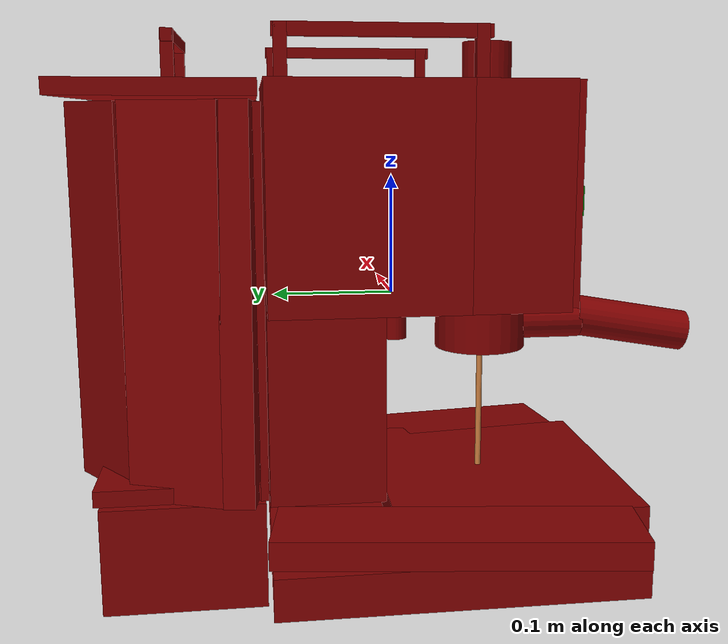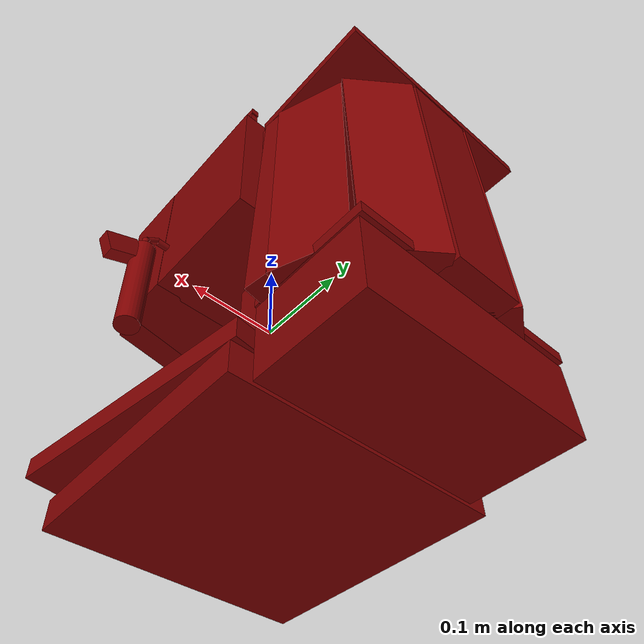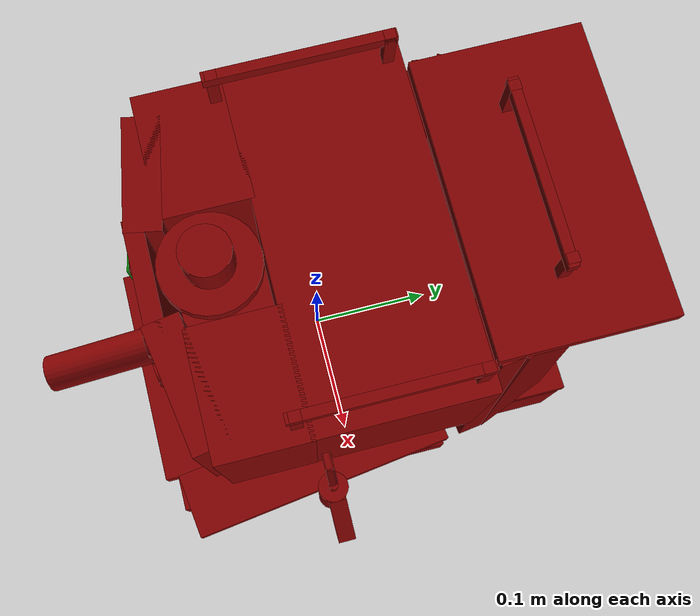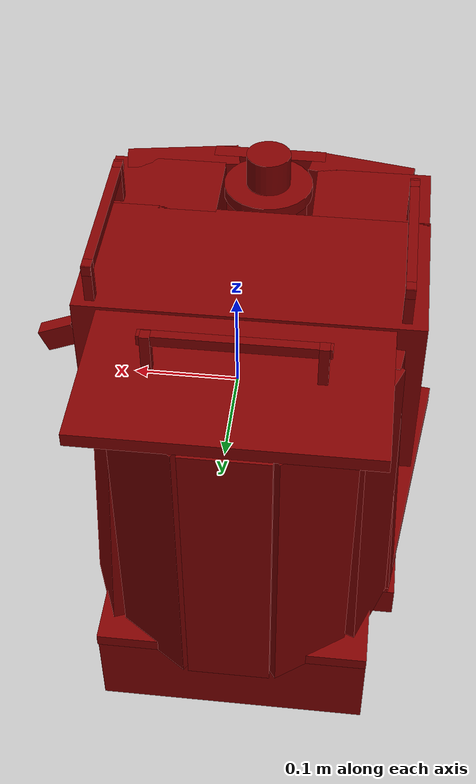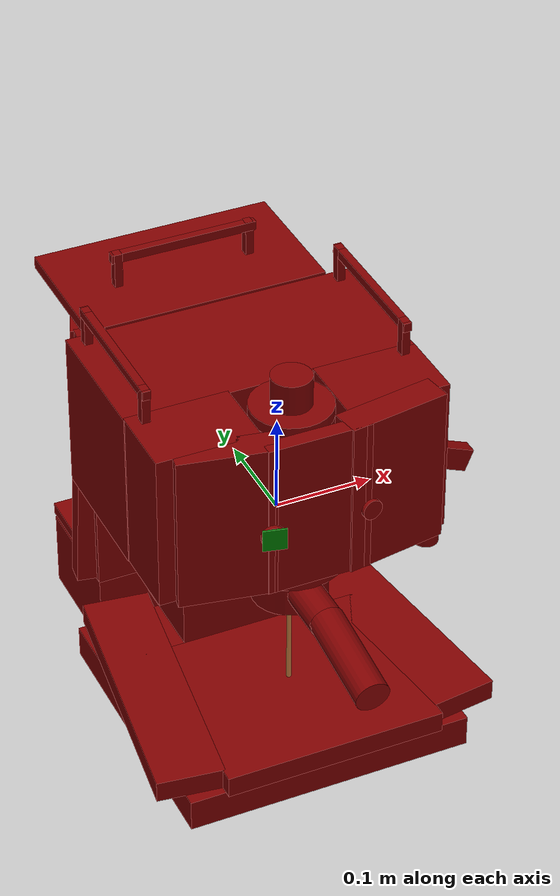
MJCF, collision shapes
<?xml version='1.0' encoding='UTF-8'?>
<mujoco model="model">
  <compiler angle="radian"/>
  <asset>
    <mesh file="visuals/Body001.obj" name="Body001_vis"/>
    <mesh file="visuals/Body002.obj" name="Body002_vis"/>
    <mesh file="visuals/Button001.obj" name="Button001_vis"/>
    <mesh file="visuals/Button002.obj" name="Button002_vis"/>
    <mesh file="visuals/Container001_Clear.obj" name="Container001_Clear_vis"/>
    <mesh file="visuals/Lever001.obj" name="Lever001_vis"/>
    <mesh file="visuals/Lever002.obj" name="Lever002_vis"/>
    <mesh file="visuals/Lid001.obj" name="Lid001_vis"/>
    <mesh file="visuals/Lid002.obj" name="Lid002_vis"/>
    <mesh file="visuals/Lid003.obj" name="Lid003_vis"/>
    <texture file="visuals/T_BC001.png" name="Body001_material" type="2d"/>
    <material name="Body001_material" rgba="1 1 1 1.0" texture="Body001_material" shininess="0.141421377658844" specular="0.5"/>
    <texture file="visuals/T_BC001.png" name="Body002_material" type="2d"/>
    <material name="Body002_material" rgba="1 1 1 1.0" texture="Body002_material" shininess="0.141421377658844" specular="1"/>
    <texture file="visuals/T_BC001.png" name="Button001_material" type="2d"/>
    <material name="Button001_material" rgba="1 1 1 1.0" texture="Button001_material" shininess="0.141421377658844" specular="0.3103448502657381"/>
    <texture file="visuals/T_BC001.png" name="Button002_material" type="2d"/>
    <material name="Button002_material" rgba="1 1 1 1.0" texture="Button002_material" shininess="0.141421377658844" specular="0.3103448502657381"/>
    <texture file="visuals/T_BC001.png" name="Button003_material" type="2d"/>
    <material name="Button003_material" rgba="1 1 1 1.0" texture="Button003_material" shininess="0.141421377658844" specular="0.3103448502657381"/>
    <texture file="visuals/T_BC001.png" name="Container001_Clear_material" type="2d"/>
    <material name="Container001_Clear_material" rgba="1 1 1 0.15410959720611572" texture="Container001_Clear_material" shininess="0.141421377658844" specular="0.3103448502657381"/>
    <texture file="visuals/T_BC001.png" name="Lid003_material" type="2d"/>
    <material name="Lid003_material" rgba="1 1 1 1.0" texture="Lid003_material" shininess="0.141421377658844" specular="0.3103448502657381"/>
    <texture file="visuals/T_BC001.png" name="Lever001_material" type="2d"/>
    <material name="Lever001_material" rgba="1 1 1 1.0" texture="Lever001_material" shininess="0.141421377658844" specular="0.3103448502657381"/>
    <texture file="visuals/T_BC001.png" name="Lever002_material" type="2d"/>
    <material name="Lever002_material" rgba="1 1 1 1.0" texture="Lever002_material" shininess="0.141421377658844" specular="0.3103448502657381"/>
    <texture file="visuals/T_BC001.png" name="Lid001_material" type="2d"/>
    <material name="Lid001_material" rgba="1 1 1 1.0" texture="Lid001_material" shininess="0.141421377658844" specular="0.3103448502657381"/>
    <texture file="visuals/T_BC001.png" name="Lid002_material" type="2d"/>
    <material name="Lid002_material" rgba="1 1 1 1.0" texture="Lid002_material" shininess="0.141421377658844" specular="0.3103448502657381"/>
  </asset>
  <default>
    <default class="visual">
      <geom conaffinity="0" contype="0" group="1" type="mesh"/>
    </default>
    <default class="collision">
      <geom group="0" rgba="0.5 0 0 0.5"/>
    </default>
    <default class="spawn">
      <geom group="0" rgba="1 1 1 0.5" contype="0" conaffinity="0"/>
      <site group="0" rgba="1 1 1 0.5"/>
    </default>
    <default class="region">
      <geom group="1" conaffinity="0" contype="0" rgba="0 1 0 0"/>
    </default>
  </default>
  <worldbody>
    <body>
      <body name="object">
        <geom class="collision" type="box" pos="-0.06851376593112946 -0.1447245329618454 0.08291678875684738" size="0.01161577645689249 0.011615777388215065 0.0006928828661330044" quat="0.702582061290741 0.7025821805000305 -0.0798647403717041 -0.07986466586589813" name="start_button" rgba="0.0 0.5 0 0.5"/>
        <site type="cylinder" rgba="0.8 0.5 0.25 1" size="0.0024676781613379717 0.0792909488081932" pos="-0.02058795839548111 -0.07405179738998413 -0.12309056520462036" name="coffee_liquid"/>
        <site rgba="0 0 0 0" size="0.009999999776482582 0.009999999776482582" pos="-0.02058795839548111 -0.07405179738998413 -0.14954249560832977" name="receptacle_place_site"/>
        <geom mesh="Body001_vis" type="mesh" solimp="0.998 0.998 0.001" solref="0.001 1" density="100" friction="0.95 0.3 0.1" class="visual" material="Body001_material"/>
        <geom class="collision" type="box" pos="-0.021635212004184723 0.0364060252904892 0.09309862554073334" size="0.14729458093643188 0.07128486782312393 0.08131664246320724" quat="1.0 0.0 0.0 0.0"/>
        <geom class="collision" type="box" pos="-0.02082536742091179 0.06172078475356102 -0.06908071786165237" size="0.07219202071428299 0.04597011208534241 0.0840226411819458" quat="1.0 0.0 0.0 0.0"/>
        <geom class="collision" type="box" pos="-0.11601097881793976 -0.06924470514059067 0.09309862554073334" size="0.05208364874124527 0.03787752240896225 0.08131664246320724" quat="1.0 0.0 0.0 0.0"/>
        <geom class="collision" type="box" pos="0.07399333268404007 -0.06924470514059067 0.09309862554073334" size="0.05208364874124527 0.03787752240896225 0.08131664246320724" quat="1.0 0.0 0.0 0.0"/>
        <geom class="collision" type="box" pos="0.06277823448181152 -0.11316236108541489 0.09309862554073334" size="0.052083682268857956 0.015003768727183342 0.08131664246320724" quat="0.9967190623283386 0.0 0.0 0.08093922585248947"/>
        <geom class="collision" type="box" pos="-0.10416435450315475 -0.1110626608133316 0.09309862554073334" size="0.04719240590929985 0.015003764070570469 0.08131664246320724" quat="0.9956870675086975 0.0 0.0 -0.09277519583702087"/>
        <geom class="collision" type="box" pos="-0.017603421583771706 -0.1262182742357254 0.09309862554073334" size="0.0520988330245018 0.007789118681102991 0.08131664246320724" quat="1.0 0.0 0.0 0.0"/>
        <geom class="collision" type="box" pos="-0.02290576510131359 -0.03427400439977646 -0.1936548948287964" size="0.14666631817817688 0.14196491241455078 0.016575034707784653" quat="1.0 0.0 0.0 0.0"/>
        <geom class="collision" type="box" pos="-0.020230405032634735 0.17114095389842987 -0.16983871161937714" size="0.12354644387960434 0.05990883335471153 0.0403912253677845" quat="1.0 0.0 0.0 0.0"/>
        <geom class="collision" type="box" pos="0.1104625016450882 0.02601456642150879 0.2061425745487213" size="0.004120701923966408 0.07563477754592896 0.0046480572782456875" quat="1.0 0.0 0.0 0.0"/>
        <geom class="collision" type="box" pos="-0.15160506963729858 0.02601456642150879 0.2061425745487213" size="0.004120701923966408 0.07563477754592896 0.0046480572782456875" quat="1.0 0.0 0.0 0.0"/>
        <geom class="collision" type="box" pos="-0.15160506963729858 -0.042367078363895416 0.19159077107906342" size="0.004120710305869579 0.0046480693854391575 0.0192152950912714" quat="1.0 0.0 0.0 0.0"/>
        <geom class="collision" type="box" pos="-0.15160506963729858 0.0957474336028099 0.19159077107906342" size="0.004120708908885717 0.0046480679884552956 0.019215291365981102" quat="1.0 0.0 0.0 0.0"/>
        <geom class="collision" type="box" pos="0.11044031381607056 0.0957474336028099 0.19159077107906342" size="0.004120707977563143 0.004648066591471434 0.019215285778045654" quat="1.0 0.0 0.0 0.0"/>
        <geom class="collision" type="box" pos="0.11044031381607056 -0.042367078363895416 0.19159077107906342" size="0.004120706580579281 0.004648065660148859 0.019215280190110207" quat="1.0 0.0 0.0 0.0"/>
        <body name="Body002">
          <geom mesh="Body002_vis" type="mesh" solimp="0.998 0.998 0.001" solref="0.001 1" density="100" friction="0.95 0.3 0.1" class="visual" material="Body002_material"/>
        </body>
        <body name="Button001">
          <joint axis="0.13058799505233765 0.9914366602897644 0.0" pos="-0.06714199483394623 -0.13878881931304932 0.08272931724786758" limited="true" name="Button001_joint" range="0.0 0.004" type="slide" damping="1" frictionloss="1" armature=".01" stiffness="0.05"/>
          <geom mesh="Button001_vis" type="mesh" solimp="0.998 0.998 0.001" solref="0.001 1" density="100" friction="0.95 0.3 0.1" class="visual" material="Button001_material"/>
          <geom class="collision" type="cylinder" pos="-0.0679398849606514 -0.1415373831987381 0.08319780975580215" size="0.01213991828262806 0.0022727176547050476" quat="0.702582061290741 0.7025821805000305 -0.0798647403717041 -0.07986466586589813"/>
        </body>
        <body name="Button002">
          <joint axis="-0.17947769165039062 0.9837620258331299 0.0" pos="0.030989978462457657 -0.137152761220932 0.08347470313310623" limited="true" name="Button002_joint" range="0.0 0.004" type="slide" damping="1" frictionloss="1" armature=".01" stiffness="0.05"/>
          <geom mesh="Button002_vis" type="mesh" solimp="0.998 0.998 0.001" solref="0.001 1" density="100" friction="0.95 0.3 0.1" class="visual" material="Button002_material"/>
          <geom class="collision" type="cylinder" pos="0.03177396208047867 -0.14068342745304108 0.08319783210754395" size="0.010313350707292557 0.0019307654583826661" quat="0.7055003046989441 0.7055003046989441 0.04763747379183769 0.04763757437467575"/>
        </body>
        <body name="Container001_Clear">
          <joint axis="0.0 0.0 1.0" pos="-0.020733514800667763 0.18044137954711914 0.017020776867866516" limited="true" name="Container001_Clear_joint" range="0.0 0.1" type="slide" damping="1" frictionloss="1" armature=".01" stiffness="0.05"/>
          <geom mesh="Container001_Clear_vis" type="mesh" solimp="0.998 0.998 0.001" solref="0.001 1" density="100" friction="0.95 0.3 0.1" class="visual" material="Container001_Clear_material"/>
          <geom class="collision" type="box" pos="-0.020477641373872757 0.2387157827615738 0.01626390777528286" size="0.036769669502973557 0.014528339728713036 0.14323022961616516" quat="1.0 0.0 0.0 0.0"/>
          <geom class="collision" type="box" pos="-0.0841248631477356 0.2196182906627655 0.01626390777528286" size="0.03676966205239296 0.014528336003422737 0.14323022961616516" quat="0.9526460766792297 0.0 0.0 0.30408135056495667"/>
          <geom class="collision" type="box" pos="-0.128435879945755 0.16900819540023804 0.016470782458782196" size="0.03676966577768326 0.014528346247971058 0.14323022961616516" quat="0.8259068131446838 0.00852446723729372 0.005818264093250036 0.5637121796607971"/>
          <geom class="collision" type="box" pos="-0.14209634065628052 0.12770849466323853 0.016779353842139244" size="0.011425700969994068 0.014528325758874416 0.14323022961616516" quat="0.7525190711021423 0.01661069318652153 0.014528759755194187 0.6582006216049194"/>
          <geom class="collision" type="box" pos="0.09754820168018341 0.12687620520591736 0.016602937132120132" size="0.011895114555954933 0.014528341591358185 0.14323022961616516" quat="0.021333536133170128 -0.7523999810218811 0.6580964922904968 -0.01865963824093342"/>
          <geom class="collision" type="box" pos="0.0850297138094902 0.16883383691310883 0.01669393666088581" size="0.03676966577768326 0.014528341591358185 0.14323022961616516" quat="0.02118142694234848 -0.8256791830062866 0.5635567307472229 -0.014457117766141891"/>
          <geom class="collision" type="box" pos="0.042246975004673004 0.2196182906627655 0.01626390777528286" size="0.03676966205239296 0.014528336003422737 0.14323022961616516" quat="1.5482581829928677e-06 0.9526460766792297 -0.30408135056495667 -4.94198673095525e-07"/>
          <geom class="collision" type="box" pos="-0.02182834781706333 0.1504402607679367 0.015990735962986946" size="0.05624181404709816 0.002910513198003173 0.14295250177383423" quat="1.0 0.0 0.0 0.0"/>
          <geom class="collision" type="box" pos="-0.11866945028305054 0.11217980086803436 0.015990735962986946" size="0.026219243183732033 0.002910513198003173 0.14295250177383423" quat="1.0 0.0 0.0 0.0"/>
          <geom class="collision" type="box" pos="0.07735524326562881 0.11217980086803436 0.015990735962986946" size="0.026219243183732033 0.002910513198003173 0.14295250177383423" quat="1.0 0.0 0.0 0.0"/>
          <geom class="collision" type="box" pos="-0.08602768182754517 0.1307925134897232 0.015990735962986946" size="0.022465838119387627 0.00291051366366446 0.14295250177383423" quat="0.8509838581085205 0.0 0.0 0.5251917839050293"/>
          <geom class="collision" type="box" pos="0.04576868936419487 0.1307925134897232 0.015990735962986946" size="0.022465838119387627 0.00291051366366446 0.14295250177383423" quat="1.383034714308451e-06 0.8509838581085205 -0.5251917839050293 -8.535517395102943e-07"/>
          <geom class="collision" type="box" pos="-0.020230405032634735 0.17269527912139893 -0.12046070396900177" size="0.12354644387960434 0.061463166028261185 0.006055094301700592" quat="1.0 0.0 0.0 0.0"/>
          <geom class="collision" type="box" pos="-0.017194604501128197 0.13026933372020721 0.023873498663306236" size="0.06714106351137161 0.01875326968729496 0.13616177439689636" quat="1.0 0.0 0.0 0.0"/>
          <body name="Lid003">
            <joint axis="0.0 0.0 1.0" pos="-0.02072305791079998 0.1803269386291504 0.18530502915382385" limited="true" name="Lid003_joint" range="0.0 0.08" type="slide" damping="1" frictionloss="1" armature=".01" stiffness="0.05"/>
            <geom mesh="Lid003_vis" type="mesh" solimp="0.998 0.998 0.001" solref="0.001 1" density="100" friction="0.95 0.3 0.1" class="visual" material="Lid003_material"/>
            <geom class="collision" type="box" pos="-0.020230405032634735 0.1823178231716156 0.1685759425163269" size="0.12354644387960434 0.07108570635318756 0.006055094301700592" quat="1.0 0.0 0.0 0.0"/>
            <geom class="collision" type="box" pos="-0.019263939931988716 0.174406960606575 0.2061425745487213" size="0.07563477754592896 0.004120714031159878 0.0046480572782456875" quat="1.0 0.0 0.0 0.0"/>
            <geom class="collision" type="box" pos="0.049537137150764465 0.17558178305625916 0.19159077107906342" size="0.004120704252272844 0.004648062866181135 0.01921527087688446" quat="1.0 0.0 0.0 0.0"/>
            <geom class="collision" type="box" pos="-0.08848408609628677 0.1745239794254303 0.19159077107906342" size="0.004120702855288982 0.0046480619348585606 0.019215265288949013" quat="1.0 0.0 0.0 0.0"/>
          </body>
        </body>
        <body name="Lever001">
          <joint axis="-1.0 0.0 0.0" pos="0.12397479265928268 -0.023936802521348 0.0660196989774704" limited="true" name="Lever001_joint" range="0.0 0.5235987755982988" type="hinge" damping="1" frictionloss="1" armature=".01" stiffness="1"/>
          <geom mesh="Lever001_vis" type="mesh" solimp="0.998 0.998 0.001" solref="0.001 1" density="100" friction="0.95 0.3 0.1" class="visual" material="Lever001_material"/>
          <geom class="collision" type="cylinder" pos="0.15189716219902039 -0.02412339299917221 -0.017109105363488197" size="0.01282657589763403 0.05715467408299446" quat="1.0 0.0 0.0 0.0"/>
          <geom class="collision" type="cylinder" pos="0.13177520036697388 -0.02412339486181736 0.06632830947637558" size="0.0038357796147465706 0.007584305014461279" quat="0.707107424736023 0.0 -0.7071061730384827 0.0"/>
          <geom class="collision" type="cylinder" pos="0.14434599876403809 -0.02412339486181736 0.0626101866364479" size="0.0038357789162546396 0.007584304083138704" quat="0.8966025114059448 0.0 -0.4428362548351288 0.0"/>
          <geom class="collision" type="cylinder" pos="0.15186485648155212 -0.02412339486181736 0.04913293570280075" size="0.0038357796147465706 0.008536911569535732" quat="0.9999951720237732 0.0 -0.0031023002229630947 0.0"/>
          <geom class="collision" type="box" pos="0.1766280233860016 -0.023355277255177498 0.02154085971415043" size="0.011908872984349728 0.007407616823911667 0.018119605258107185" quat="0.8306339383125305 0.0 -0.5568189024925232 0.0"/>
        </body>
        <body name="Lever002">
          <joint axis="0.0 0.0 -1.0" pos="-0.020733557641506195 -0.07398144900798798 0.014321302995085716" limited="true" name="Lever002_joint" range="0.0 1.5707963267948966" type="hinge" damping="1" frictionloss="1" armature=".01" stiffness="1"/>
          <geom mesh="Lever002_vis" type="mesh" solimp="0.998 0.998 0.001" solref="0.001 1" density="100" friction="0.95 0.3 0.1" class="visual" material="Lever002_material"/>
          <geom class="collision" type="cylinder" pos="-0.020657123997807503 -0.07357221841812134 -0.01800411567091942" size="0.037973616272211075 0.026336975395679474" quat="1.0 0.0 0.0 0.0"/>
          <geom class="collision" type="cylinder" pos="-0.020657123997807503 -0.07357221841812134 0.0048453835770487785" size="0.054769620299339294 0.005931093357503414" quat="1.0 0.0 0.0 0.0"/>
          <geom class="collision" type="cylinder" pos="-0.020657123997807503 -0.13285332918167114 -0.02137979120016098" size="0.01731661520898342 0.026336969807744026" quat="0.7071068286895752 -0.7071067690849304 0.0 0.0"/>
          <geom class="collision" type="cylinder" pos="-0.020657123997807503 -0.20532448589801788 -0.02806774526834488" size="0.01731661520898342 0.04982971027493477" quat="0.7645754814147949 -0.6445342302322388 0.0 0.0"/>
        </body>
        <body name="Lid001">
          <joint axis="0.0 0.0 1.0" pos="-0.020887883380055428 -0.03869928419589996 -0.16379527747631073" limited="true" name="Lid001_joint" range="0.0 0.05" type="slide" damping="1" frictionloss="1" armature=".01" stiffness="0.05"/>
          <geom mesh="Lid001_vis" type="mesh" solimp="0.998 0.998 0.001" solref="0.001 1" density="100" friction="0.95 0.3 0.1" class="visual" material="Lid001_material"/>
          <geom class="collision" type="box" pos="-0.022164756432175636 -0.08613583445549011 -0.16241131722927094" size="0.11271125823259354 0.10003938525915146 0.011030248366296291" quat="1.0 0.0 0.0 0.0"/>
          <geom class="collision" type="box" pos="-0.1475306749343872 -0.030970744788646698 -0.16241131722927094" size="0.03376486152410507 0.13839538395404816 0.011030261404812336" quat="0.9978577494621277 0.0 0.0 -0.06542115658521652"/>
          <geom class="collision" type="box" pos="0.10537225008010864 -0.030970744788646698 -0.16241131722927094" size="0.03373399376869202 0.13839946687221527 0.011030261404812336" quat="1.6217370557569666e-06 0.9978577494621277 0.06542112678289413 1.0632373914631899e-07"/>
        </body>
        <body name="Lid002">
          <joint axis="0.0 0.0 1.0" pos="-0.020733533427119255 -0.07620389759540558 0.18870213627815247" limited="true" name="Lid002_joint" range="0.0 0.05" type="slide" damping="1" frictionloss="1" armature=".01" stiffness="0.05"/>
          <geom mesh="Lid002_vis" type="mesh" solimp="0.998 0.998 0.001" solref="0.001 1" density="100" friction="0.95 0.3 0.1" class="visual" material="Lid002_material"/>
          <geom class="collision" type="cylinder" pos="-0.020733527839183807 -0.07620387524366379 0.17146366834640503" size="0.04043174162507057 0.0056638699024915695" quat="1.0 0.0 0.0 0.0"/>
          <geom class="collision" type="cylinder" pos="-0.020733527839183807 -0.07620387524366379 0.1919710636138916" size="0.02013886347413063 0.0163128599524498" quat="1.0 0.0 0.0 0.0"/>
        </body>
        <geom class="region" name="reg_main" type="box" pos="-0.02099168300628662 0.03226540982723236 0.0" size="0.17331522703170776 0.2198188453912735 0.21027830243110657"/>
      </body>
    </body>
  </worldbody>
  <actuator>
    <motor name="Button001_joint_actuator" joint="Button001_joint" gear="0.5"/>
    <motor name="Button002_joint_actuator" joint="Button002_joint" gear="0.5"/>
    <motor name="Container001_Clear_joint_actuator" joint="Container001_Clear_joint" gear="10"/>
    <motor name="Lever001_joint_actuator" joint="Lever001_joint" gear="10"/>
    <motor name="Lever002_joint_actuator" joint="Lever002_joint" gear="10"/>
    <motor name="Lid001_joint_actuator" joint="Lid001_joint" gear="10"/>
    <motor name="Lid002_joint_actuator" joint="Lid002_joint" gear="10"/>
    <motor name="Lid003_joint_actuator" joint="Lid003_joint" gear="10"/>
  </actuator>
</mujoco>
